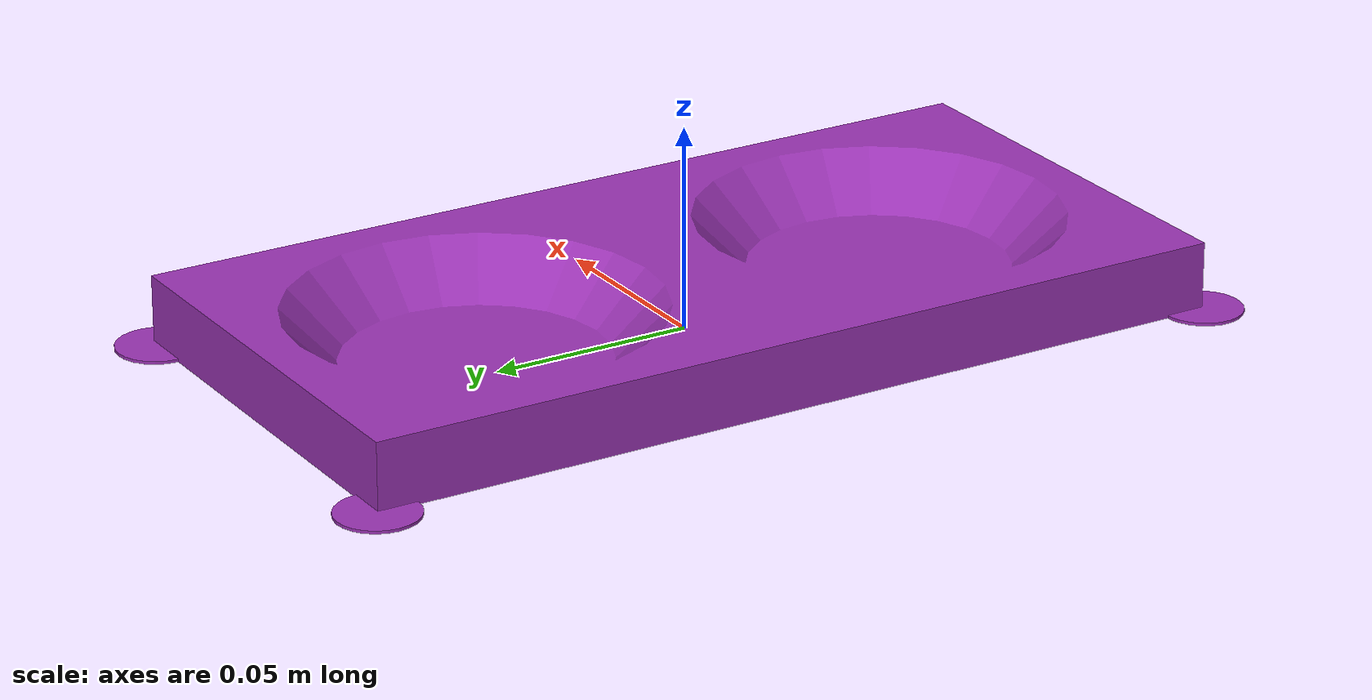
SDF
<?xml version='1.0'?>
<sdf version='1.6'>
  <model name='Large_Gear_Vessel'>
    <link name='link_0'>
      <inertial>
        <mass>1.10</mass>
        <inertia>
	        <!--height = 0.016783-->

          <ixx>4.4709e-3</ixx>
          <ixy>0</ixy>
          <ixz>0</ixz>
          <iyy>1.1504e-3</iyy>
          <iyz>0</iyz>
          <izz>5.6183e-3</izz>

        </inertia>
      </inertial>
      <pose frame=''>0 0 0.002005 0 -0 0</pose>
      <visual name='visual'>
        <pose frame=''>0 0 -0.002005 0 -0 0</pose>
        <geometry>
          <mesh>
            <scale>0.0254 0.0254 0.0254</scale>
            <uri>model://meshes/large_gear_holder_Centered_ZeroZmin.stl</uri>
          </mesh>
        </geometry>
        <material>
          <lighting>1</lighting>
          <script>
            <uri>file://media/materials/scripts/gazebo.material</uri>
            <name>Gazebo/Purple</name>
          </script>
          <shader type='pixel'/>
        </material>
        <transparency>0</transparency>
        <cast_shadows>1</cast_shadows>
      </visual>
      <collision name='collision'>
        <laser_retro>0</laser_retro>
        <max_contacts>100</max_contacts>
        <pose frame=''>0 0 0 0 -0 0</pose>
        <geometry>
          <box>
            <size>0.111954 0.220810 0.004010</size>
          </box>
        </geometry>
        <surface>
          <friction>
            <ode>
              <mu>1</mu>
              <mu2>1</mu2>
              <fdir1>0 0 0</fdir1>
              <slip1>0</slip1>
              <slip2>0</slip2>
            </ode>
            <torsional>
              <coefficient>1</coefficient>
              <patch_radius>0</patch_radius>
              <surface_radius>0</surface_radius>
              <use_patch_radius>1</use_patch_radius>
              <ode>
                <slip>0</slip>
              </ode>
            </torsional>
          </friction>
          <bounce>
            <restitution_coefficient>0</restitution_coefficient>
            <threshold>1e+06</threshold>
          </bounce>
          <contact>
            <collide_without_contact>0</collide_without_contact>
            <collide_without_contact_bitmask>1</collide_without_contact_bitmask>
            <collide_bitmask>1</collide_bitmask>
            <ode>
              <kp>1e+13</kp>
              <kd>1</kd>
              <max_vel>0.01</max_vel>
              <min_depth>0</min_depth>
            </ode>
            <bullet>
              <split_impulse>1</split_impulse>
              <split_impulse_penetration_threshold>-0.01</split_impulse_penetration_threshold>
              <kp>1e+13</kp>
              <kd>1</kd>
            </bullet>
          </contact>
        </surface>
      </collision>
    </link>
    <static>0</static>
  </model>
</sdf>
